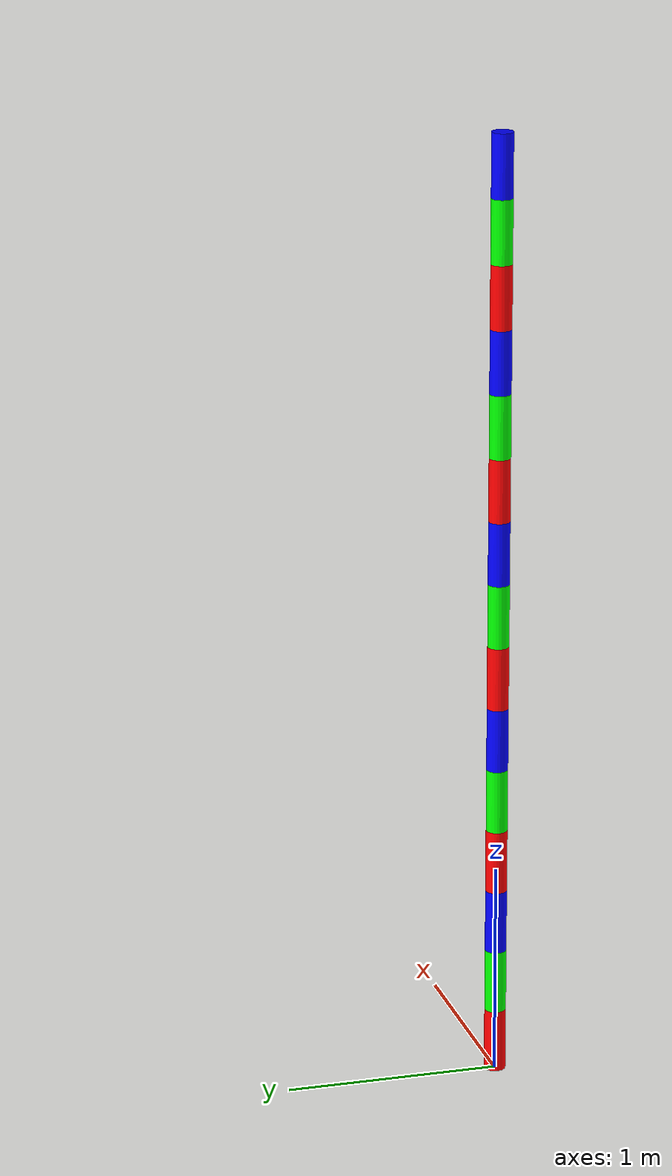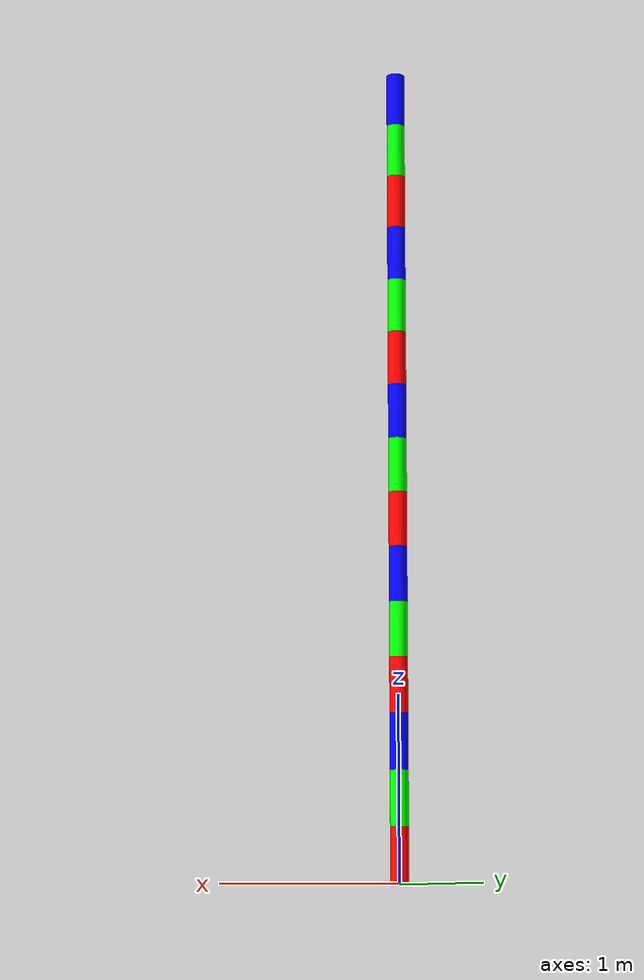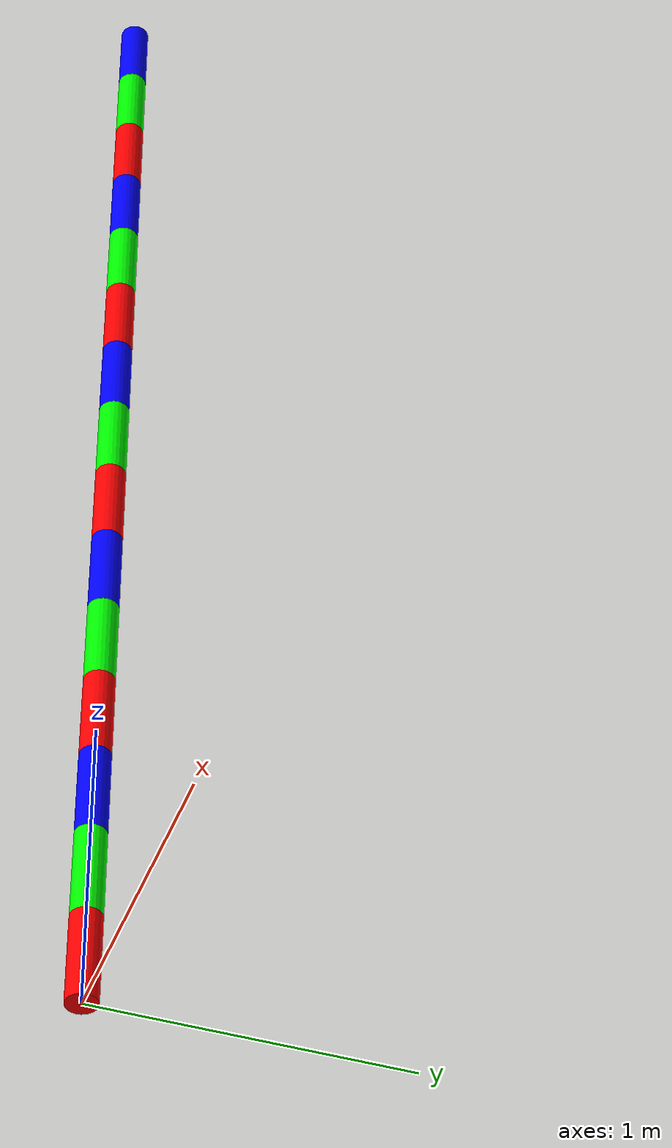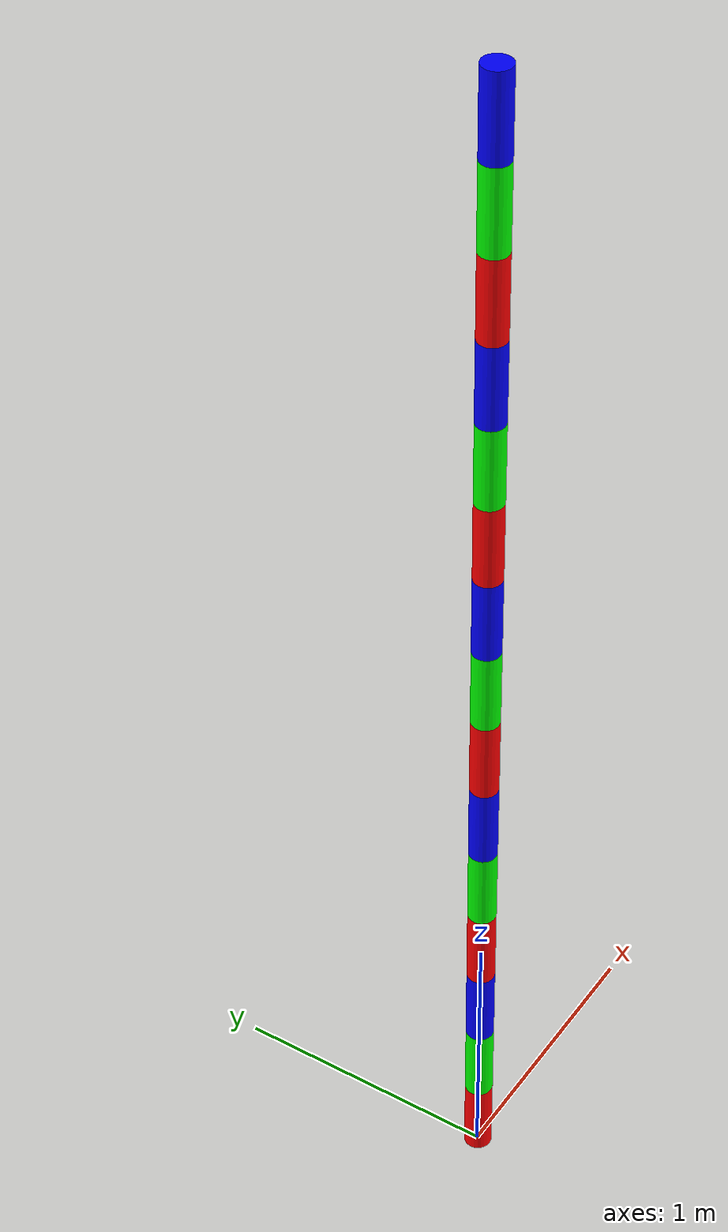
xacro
<?xml version="1.0" ?>
<robot name="snake" xmlns:xacro="http://ros.org/wiki/xacro">
  <xacro:property name="diameter" value="0.1"/>
  <xacro:property name="length" value="0.30000000000000004"/>
  <material name="red">
    <color rgba="1 0 0 1"/>
  </material>
  <material name="green">
    <color rgba="0 1 0 1"/>
  </material>
  <material name="blue">
    <color rgba="0 0 1 1"/>
  </material>
  <link name="link0">
    <visual>
      <origin xyz="0 0 ${length/2}"/>
      <geometry>
        <cylinder length="${length}" radius="${diameter/2}"/>
      </geometry>
      <material name="red"/>
    </visual>
  </link>
  <link name="link1">
    <visual>
      <origin xyz="0 0 ${length/2}"/>
      <geometry>
        <cylinder length="${length}" radius="${diameter/2}"/>
      </geometry>
      <material name="green"/>
    </visual>
  </link>
  <link name="link2">
    <visual>
      <origin xyz="0 0 ${length/2}"/>
      <geometry>
        <cylinder length="${length}" radius="${diameter/2}"/>
      </geometry>
      <material name="blue"/>
    </visual>
  </link>
  <link name="link3">
    <visual>
      <origin xyz="0 0 ${length/2}"/>
      <geometry>
        <cylinder length="${length}" radius="${diameter/2}"/>
      </geometry>
      <material name="red"/>
    </visual>
  </link>
  <link name="link4">
    <visual>
      <origin xyz="0 0 ${length/2}"/>
      <geometry>
        <cylinder length="${length}" radius="${diameter/2}"/>
      </geometry>
      <material name="green"/>
    </visual>
  </link>
  <link name="link5">
    <visual>
      <origin xyz="0 0 ${length/2}"/>
      <geometry>
        <cylinder length="${length}" radius="${diameter/2}"/>
      </geometry>
      <material name="blue"/>
    </visual>
  </link>
  <link name="link6">
    <visual>
      <origin xyz="0 0 ${length/2}"/>
      <geometry>
        <cylinder length="${length}" radius="${diameter/2}"/>
      </geometry>
      <material name="red"/>
    </visual>
  </link>
  <link name="link7">
    <visual>
      <origin xyz="0 0 ${length/2}"/>
      <geometry>
        <cylinder length="${length}" radius="${diameter/2}"/>
      </geometry>
      <material name="green"/>
    </visual>
  </link>
  <link name="link8">
    <visual>
      <origin xyz="0 0 ${length/2}"/>
      <geometry>
        <cylinder length="${length}" radius="${diameter/2}"/>
      </geometry>
      <material name="blue"/>
    </visual>
  </link>
  <link name="link9">
    <visual>
      <origin xyz="0 0 ${length/2}"/>
      <geometry>
        <cylinder length="${length}" radius="${diameter/2}"/>
      </geometry>
      <material name="red"/>
    </visual>
  </link>
  <link name="link10">
    <visual>
      <origin xyz="0 0 ${length/2}"/>
      <geometry>
        <cylinder length="${length}" radius="${diameter/2}"/>
      </geometry>
      <material name="green"/>
    </visual>
  </link>
  <link name="link11">
    <visual>
      <origin xyz="0 0 ${length/2}"/>
      <geometry>
        <cylinder length="${length}" radius="${diameter/2}"/>
      </geometry>
      <material name="blue"/>
    </visual>
  </link>
  <link name="link12">
    <visual>
      <origin xyz="0 0 ${length/2}"/>
      <geometry>
        <cylinder length="${length}" radius="${diameter/2}"/>
      </geometry>
      <material name="red"/>
    </visual>
  </link>
  <link name="link13">
    <visual>
      <origin xyz="0 0 ${length/2}"/>
      <geometry>
        <cylinder length="${length}" radius="${diameter/2}"/>
      </geometry>
      <material name="green"/>
    </visual>
  </link>
  <link name="link14">
    <visual>
      <origin xyz="0 0 ${length/2}"/>
      <geometry>
        <cylinder length="${length}" radius="${diameter/2}"/>
      </geometry>
      <material name="blue"/>
    </visual>
  </link>
  <joint name="joint0" type="revolute">
    <parent link="link0"/>
    <child link="link1"/>
    <axis xyz="1 0 0"/>
    <origin xyz="0 0 ${length}"/>
    <limit effort="100" lower="-${pi/4}" upper="${pi/4}" velocity="100"/>
  </joint>
  <joint name="joint1" type="revolute">
    <parent link="link1"/>
    <child link="link2"/>
    <axis xyz="0 1 0"/>
    <origin xyz="0 0 ${length}"/>
    <limit effort="100" lower="-${pi/4}" upper="${pi/4}" velocity="100"/>
  </joint>
  <joint name="joint2" type="revolute">
    <parent link="link2"/>
    <child link="link3"/>
    <axis xyz="1 0 0"/>
    <origin xyz="0 0 ${length}"/>
    <limit effort="100" lower="-${pi/4}" upper="${pi/4}" velocity="100"/>
  </joint>
  <joint name="joint3" type="revolute">
    <parent link="link3"/>
    <child link="link4"/>
    <axis xyz="0 1 0"/>
    <origin xyz="0 0 ${length}"/>
    <limit effort="100" lower="-${pi/4}" upper="${pi/4}" velocity="100"/>
  </joint>
  <joint name="joint4" type="revolute">
    <parent link="link4"/>
    <child link="link5"/>
    <axis xyz="1 0 0"/>
    <origin xyz="0 0 ${length}"/>
    <limit effort="100" lower="-${pi/4}" upper="${pi/4}" velocity="100"/>
  </joint>
  <joint name="joint5" type="revolute">
    <parent link="link5"/>
    <child link="link6"/>
    <axis xyz="0 1 0"/>
    <origin xyz="0 0 ${length}"/>
    <limit effort="100" lower="-${pi/4}" upper="${pi/4}" velocity="100"/>
  </joint>
  <joint name="joint6" type="revolute">
    <parent link="link6"/>
    <child link="link7"/>
    <axis xyz="1 0 0"/>
    <origin xyz="0 0 ${length}"/>
    <limit effort="100" lower="-${pi/4}" upper="${pi/4}" velocity="100"/>
  </joint>
  <joint name="joint7" type="revolute">
    <parent link="link7"/>
    <child link="link8"/>
    <axis xyz="0 1 0"/>
    <origin xyz="0 0 ${length}"/>
    <limit effort="100" lower="-${pi/4}" upper="${pi/4}" velocity="100"/>
  </joint>
  <joint name="joint8" type="revolute">
    <parent link="link8"/>
    <child link="link9"/>
    <axis xyz="1 0 0"/>
    <origin xyz="0 0 ${length}"/>
    <limit effort="100" lower="-${pi/4}" upper="${pi/4}" velocity="100"/>
  </joint>
  <joint name="joint9" type="revolute">
    <parent link="link9"/>
    <child link="link10"/>
    <axis xyz="0 1 0"/>
    <origin xyz="0 0 ${length}"/>
    <limit effort="100" lower="-${pi/4}" upper="${pi/4}" velocity="100"/>
  </joint>
  <joint name="joint10" type="revolute">
    <parent link="link10"/>
    <child link="link11"/>
    <axis xyz="1 0 0"/>
    <origin xyz="0 0 ${length}"/>
    <limit effort="100" lower="-${pi/4}" upper="${pi/4}" velocity="100"/>
  </joint>
  <joint name="joint11" type="revolute">
    <parent link="link11"/>
    <child link="link12"/>
    <axis xyz="0 1 0"/>
    <origin xyz="0 0 ${length}"/>
    <limit effort="100" lower="-${pi/4}" upper="${pi/4}" velocity="100"/>
  </joint>
  <joint name="joint12" type="revolute">
    <parent link="link12"/>
    <child link="link13"/>
    <axis xyz="1 0 0"/>
    <origin xyz="0 0 ${length}"/>
    <limit effort="100" lower="-${pi/4}" upper="${pi/4}" velocity="100"/>
  </joint>
  <joint name="joint13" type="revolute">
    <parent link="link13"/>
    <child link="link14"/>
    <axis xyz="0 1 0"/>
    <origin xyz="0 0 ${length}"/>
    <limit effort="100" lower="-${pi/4}" upper="${pi/4}" velocity="100"/>
  </joint>
</robot>
